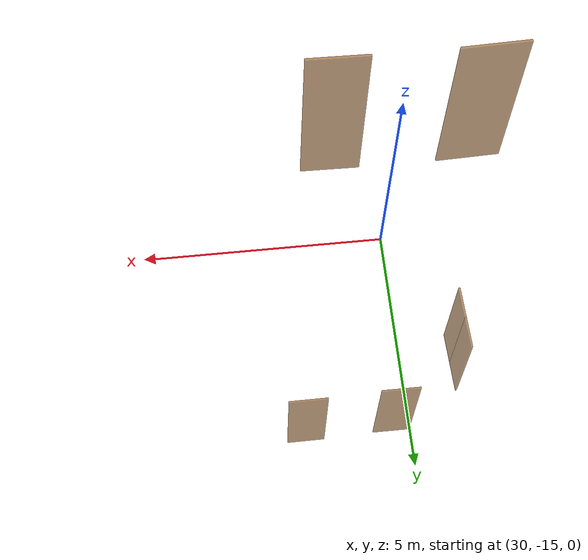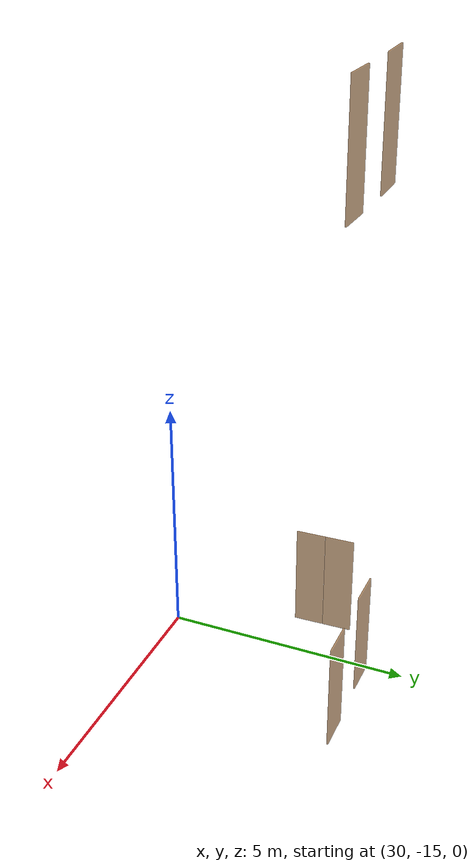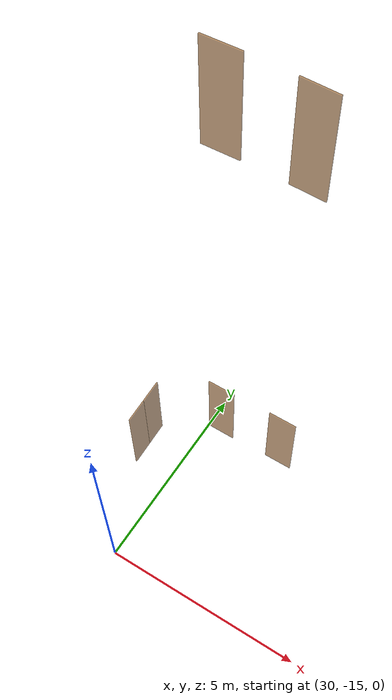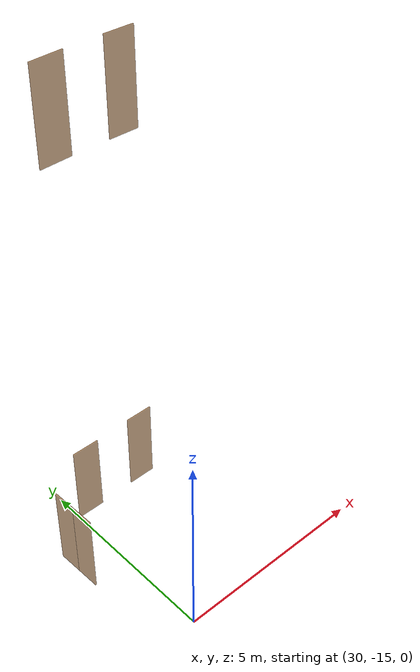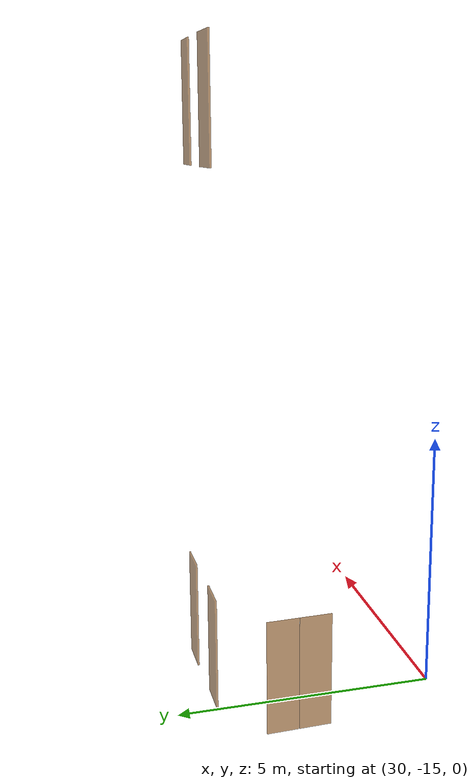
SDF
<sdf version="1.7">
 <world name="sim_world">
  <model name="door24">
   <pose>30.37290126329647 -10.758362565942143 0.0 0 0 3.141592653589793</pose>
   <link name="right">
    <pose>0 0 1.11 0 0 0</pose>
    <visual name="right_visual">
     <geometry><box><size>0.7199090851457741 0.03 2.2</size></box></geometry>
     <material>
      <ambient>0.5 0.25 0 0.6</ambient>
      <diffuse>0.5 0.25 0 0.6</diffuse>
      <pbr><metal><metalness>0.0</metalness></metal></pbr>
     </material>
    </visual>
    <collision name="right_collision">
     <geometry><box><size>0.7199090851457741 0.03 2.2</size></box></geometry>
     <surface><contact><collide_bitmask>0x02</collide_bitmask></contact></surface>
    </collision>
    <inertial>
     <mass>50.0</mass>
     <inertia><ixx>20.17041666666667</ixx><iyy>22.326121211980944</iyy><izz>2.163204545314273</izz></inertia>
    </inertial>
   </link>
   <joint name="right_joint" type="revolute">
    <parent>world</parent>
    <child>right</child>
    <axis><xyz>0 0 1</xyz><limit><lower>0</lower><upper>1.57</upper></limit></axis>
    <pose>0.36495454257288706 0 0 0 0 0</pose>
   </joint>
   <plugin name="register_component" filename="libregister_component.so">
    <component name="Door">
     <v_max_door>0.5</v_max_door>
     <a_max_door>0.3</a_max_door>
     <a_nom_door>0.15</a_nom_door>
     <dx_min_door>0.01</dx_min_door>
     <f_max_door>500.0</f_max_door>
     <ros_interface>true</ros_interface>
     <door name="door24" type="SwingDoor" left_joint_name="empty_joint" right_joint_name="right_joint"/>
    </component>
   </plugin>
  </model>
  <model name="door25">
   <pose>32.063772293609546 -10.714148925956838 0.0 0 0 -3.136152313331386</pose>
   <link name="right">
    <pose>0 0 1.11 0 0 0</pose>
    <visual name="right_visual">
     <geometry><box><size>0.719861919994674 0.03 2.2</size></box></geometry>
     <material>
      <ambient>0.5 0.25 0 0.6</ambient>
      <diffuse>0.5 0.25 0 0.6</diffuse>
      <pbr><metal><metalness>0.0</metalness></metal></pbr>
     </material>
    </visual>
    <collision name="right_collision">
     <geometry><box><size>0.719861919994674 0.03 2.2</size></box></geometry>
     <surface><contact><collide_bitmask>0x02</collide_bitmask></contact></surface>
    </collision>
    <inertial>
     <mass>50.0</mass>
     <inertia><ixx>20.17041666666667</ixx><iyy>22.325838266076747</iyy><izz>2.162921599410077</izz></inertia>
    </inertial>
   </link>
   <joint name="right_joint" type="revolute">
    <parent>world</parent>
    <child>right</child>
    <axis><xyz>0 0 -1</xyz><limit><lower>0</lower><upper>1.57</upper></limit></axis>
    <pose>0.364930959997337 0 0 0 0 0</pose>
   </joint>
   <plugin name="register_component" filename="libregister_component.so">
    <component name="Door">
     <v_max_door>0.5</v_max_door>
     <a_max_door>0.3</a_max_door>
     <a_nom_door>0.15</a_nom_door>
     <dx_min_door>0.01</dx_min_door>
     <f_max_door>500.0</f_max_door>
     <ros_interface>true</ros_interface>
     <door name="door25" type="SwingDoor" left_joint_name="empty_joint" right_joint_name="right_joint"/>
    </component>
   </plugin>
  </model>
  <model name="door26">
   <pose>28.98413503559683 -12.066034224858509 0.0 0 0 1.599630185866512</pose>
   <link name="right">
    <pose>0.30787722562131326 0 1.11 0 0 0</pose>
    <visual name="right_visual">
     <geometry><box><size>0.6057544512426265 0.03 2.2</size></box></geometry>
     <material>
      <ambient>0.5 0.25 0 0.6</ambient>
      <diffuse>0.5 0.25 0 0.6</diffuse>
      <pbr><metal><metalness>0.0</metalness></metal></pbr>
     </material>
    </visual>
    <collision name="right_collision">
     <geometry><box><size>0.6057544512426265 0.03 2.2</size></box></geometry>
     <surface><contact><collide_bitmask>0x02</collide_bitmask></contact></surface>
    </collision>
    <inertial>
     <mass>50.0</mass>
     <inertia><ixx>20.17041666666667</ixx><iyy>21.695576896667735</iyy><izz>1.532660230001065</izz></inertia>
    </inertial>
   </link>
   <joint name="right_joint" type="revolute">
    <parent>world</parent>
    <child>right</child>
    <axis><xyz>0 0 1</xyz><limit><lower>0</lower><upper>1.57</upper></limit></axis>
    <pose>0.30787722562131326 0 0 0 0 0</pose>
   </joint>
   <link name="left">
    <pose>-0.30787722562131326 0 1.11 0 0 0</pose>
    <visual name="left_visual">
     <geometry><box><size>0.6057544512426265 0.03 2.2</size></box></geometry>
     <material>
      <ambient>0.5 0.25 0 0.6</ambient>
      <diffuse>0.5 0.25 0 0.6</diffuse>
      <pbr><metal><metalness>0.0</metalness></metal></pbr>
     </material>
    </visual>
    <collision name="left_collision">
     <geometry><box><size>0.6057544512426265 0.03 2.2</size></box></geometry>
     <surface><contact><collide_bitmask>0x02</collide_bitmask></contact></surface>
    </collision>
    <inertial>
     <mass>50.0</mass>
     <inertia><ixx>20.17041666666667</ixx><iyy>21.695576896667735</iyy><izz>1.532660230001065</izz></inertia>
    </inertial>
   </link>
   <joint name="left_joint" type="revolute">
    <parent>world</parent>
    <child>left</child>
    <axis><xyz>0 0 1</xyz><limit><lower>-1.57</lower><upper>0</upper></limit></axis>
    <pose>-0.30787722562131326 0 0 0 0 0</pose>
   </joint>
   <plugin name="register_component" filename="libregister_component.so">
    <component name="Door">
     <v_max_door>0.5</v_max_door>
     <a_max_door>0.3</a_max_door>
     <a_nom_door>0.15</a_nom_door>
     <dx_min_door>0.01</dx_min_door>
     <f_max_door>500.0</f_max_door>
     <ros_interface>true</ros_interface>
     <door name="door26" type="DoubleSwingDoor" left_joint_name="left_joint" right_joint_name="right_joint"/>
    </component>
   </plugin>
  </model>
  <model name="N1_door17">
   <pose>30.332936386621526 -10.766380634661903 10.0 0 0 -3.108248816697608</pose>
   <link name="right">
    <pose>0 0 1.11 0 0 0</pose>
    <visual name="right_visual">
     <geometry><box><size>0.7785833608534494 0.03 2.2</size></box></geometry>
     <material>
      <ambient>0.5 0.25 0 0.6</ambient>
      <diffuse>0.5 0.25 0 0.6</diffuse>
      <pbr><metal><metalness>0.0</metalness></metal></pbr>
     </material>
    </visual>
    <collision name="right_collision">
     <geometry><box><size>0.7785833608534494 0.03 2.2</size></box></geometry>
     <surface><contact><collide_bitmask>0x02</collide_bitmask></contact></surface>
    </collision>
    <inertial>
     <mass>50.0</mass>
     <inertia><ixx>20.17041666666667</ixx><iyy>22.692466874157724</iyy><izz>2.5295502074910527</izz></inertia>
    </inertial>
   </link>
   <joint name="right_joint" type="revolute">
    <parent>world</parent>
    <child>right</child>
    <axis><xyz>0 0 1</xyz><limit><lower>0</lower><upper>1.57</upper></limit></axis>
    <pose>0.3942916804267247 0 0 0 0 0</pose>
   </joint>
   <plugin name="register_component" filename="libregister_component.so">
    <component name="Door">
     <v_max_door>0.5</v_max_door>
     <a_max_door>0.3</a_max_door>
     <a_nom_door>0.15</a_nom_door>
     <dx_min_door>0.01</dx_min_door>
     <f_max_door>500.0</f_max_door>
     <ros_interface>true</ros_interface>
     <door name="N1_door17" type="SwingDoor" left_joint_name="empty_joint" right_joint_name="right_joint"/>
    </component>
   </plugin>
  </model>
  <model name="N1_door18">
   <pose>32.02164058884907 -10.762366272390462 10.0 0 0 3.1252456193026097</pose>
   <link name="right">
    <pose>0 0 1.11 0 0 0</pose>
    <visual name="right_visual">
     <geometry><box><size>0.7152176698242874 0.03 2.2</size></box></geometry>
     <material>
      <ambient>0.5 0.25 0 0.6</ambient>
      <diffuse>0.5 0.25 0 0.6</diffuse>
      <pbr><metal><metalness>0.0</metalness></metal></pbr>
     </material>
    </visual>
    <collision name="right_collision">
     <geometry><box><size>0.7152176698242874 0.03 2.2</size></box></geometry>
     <surface><contact><collide_bitmask>0x02</collide_bitmask></contact></surface>
    </collision>
    <inertial>
     <mass>50.0</mass>
     <inertia><ixx>20.17041666666667</ixx><iyy>22.29806798012035</iyy><izz>2.135151313453681</izz></inertia>
    </inertial>
   </link>
   <joint name="right_joint" type="revolute">
    <parent>world</parent>
    <child>right</child>
    <axis><xyz>0 0 -1</xyz><limit><lower>0</lower><upper>1.57</upper></limit></axis>
    <pose>0.3626088349121437 0 0 0 0 0</pose>
   </joint>
   <plugin name="register_component" filename="libregister_component.so">
    <component name="Door">
     <v_max_door>0.5</v_max_door>
     <a_max_door>0.3</a_max_door>
     <a_nom_door>0.15</a_nom_door>
     <dx_min_door>0.01</dx_min_door>
     <f_max_door>500.0</f_max_door>
     <ros_interface>true</ros_interface>
     <door name="N1_door18" type="SwingDoor" left_joint_name="empty_joint" right_joint_name="right_joint"/>
    </component>
   </plugin>
  </model>
 </world>
</sdf>
